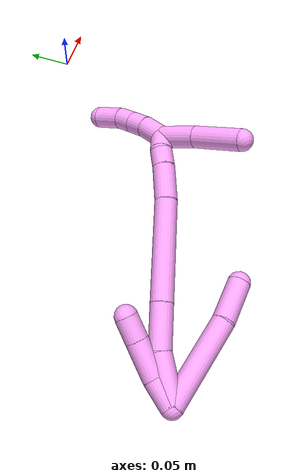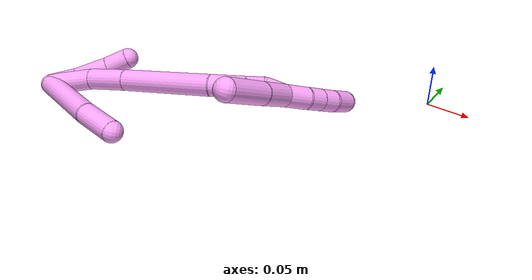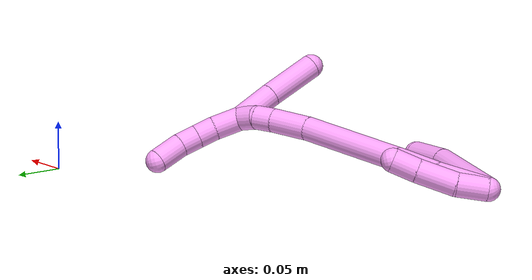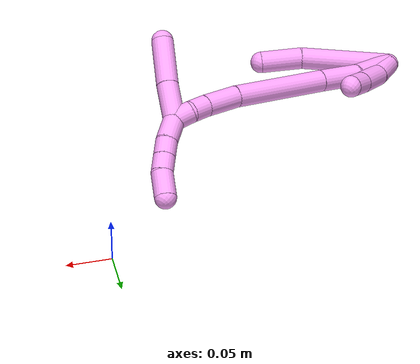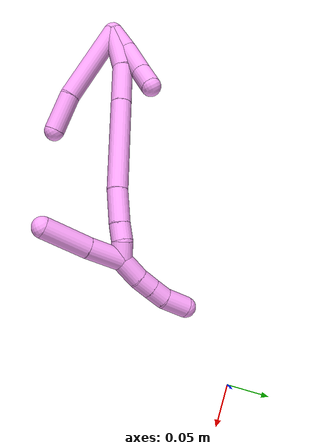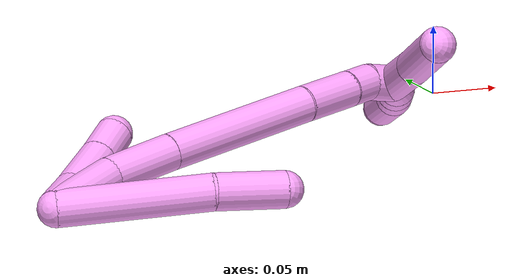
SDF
<sdf version="1.7">
 <world name="default">
  <model name="4">
   <static>0</static>
   <link name="4">
    <collision name="collision-cylinder-e_1_2_8">
     <pose>0.043497 -0.01215 -0.023846 2.67034 1.01922 2.33005</pose>
     <geometry><cylinder><radius>0.0125</radius><length>0.102142</length></cylinder></geometry>
     <surface>
      <friction><ode><mu>1.16</mu><mu2>1.16</mu2><slip1>0</slip1><slip2>0</slip2></ode></friction>
      <contact><ode><kp>1e+06</kp><kd>1</kd><max_vel>0</max_vel><min_depth>0.001</min_depth></ode></contact>
     </surface>
    </collision>
    <visual name="visual-cylinder-e_1_2_8">
     <pose>0.043497 -0.01215 -0.023846 2.67034 1.01922 2.33005</pose>
     <geometry><cylinder><radius>0.0125</radius><length>0.102142</length></cylinder></geometry>
     <material><ambient>1 0.65098 0.996078 1</ambient></material>
    </visual>
    <collision name="collision-cylinder-e_2_8_6">
     <pose>0.104797 -0.030506 -0.062427 2.74304 0.839018 2.29118</pose>
     <geometry><cylinder><radius>0.0125</radius><length>0.047858</length></cylinder></geometry>
     <surface>
      <friction><ode><mu>1.16</mu><mu2>1.16</mu2><slip1>0</slip1><slip2>0</slip2></ode></friction>
      <contact><ode><kp>1e+06</kp><kd>1</kd><max_vel>0</max_vel><min_depth>0.001</min_depth></ode></contact>
     </surface>
    </collision>
    <visual name="visual-cylinder-e_2_8_6">
     <pose>0.104797 -0.030506 -0.062427 2.74304 0.839018 2.29118</pose>
     <geometry><cylinder><radius>0.0125</radius><length>0.047858</length></cylinder></geometry>
     <material><ambient>1 0.65098 0.996078 1</ambient></material>
    </visual>
    <collision name="collision-cylinder-e_1_2_9">
     <pose>0.001782 0.00649 -0.014551 -2.72207 0.111355 -0.512105</pose>
     <geometry><cylinder><radius>0.0125</radius><length>0.032064</length></cylinder></geometry>
     <surface>
      <friction><ode><mu>1.16</mu><mu2>1.16</mu2><slip1>0</slip1><slip2>0</slip2></ode></friction>
      <contact><ode><kp>1e+06</kp><kd>1</kd><max_vel>0</max_vel><min_depth>0.001</min_depth></ode></contact>
     </surface>
    </collision>
    <visual name="visual-cylinder-e_1_2_9">
     <pose>0.001782 0.00649 -0.014551 -2.72207 0.111355 -0.512105</pose>
     <geometry><cylinder><radius>0.0125</radius><length>0.032064</length></cylinder></geometry>
     <material><ambient>1 0.65098 0.996078 1</ambient></material>
    </visual>
    <collision name="collision-cylinder-e_2_9_10">
     <pose>0.009292 0.023143 -0.046191 -2.60507 0.280544 -0.949034</pose>
     <geometry><cylinder><radius>0.0125</radius><length>0.041384</length></cylinder></geometry>
     <surface>
      <friction><ode><mu>1.16</mu><mu2>1.16</mu2><slip1>0</slip1><slip2>0</slip2></ode></friction>
      <contact><ode><kp>1e+06</kp><kd>1</kd><max_vel>0</max_vel><min_depth>0.001</min_depth></ode></contact>
     </surface>
    </collision>
    <visual name="visual-cylinder-e_2_9_10">
     <pose>0.009292 0.023143 -0.046191 -2.60507 0.280544 -0.949034</pose>
     <geometry><cylinder><radius>0.0125</radius><length>0.041384</length></cylinder></geometry>
     <material><ambient>1 0.65098 0.996078 1</ambient></material>
    </visual>
    <collision name="collision-cylinder-e_3_10_5">
     <pose>0.019018 0.04048 -0.073712 -2.53917 0.3058 -0.920948</pose>
     <geometry><cylinder><radius>0.0125</radius><length>0.026552</length></cylinder></geometry>
     <surface>
      <friction><ode><mu>1.16</mu><mu2>1.16</mu2><slip1>0</slip1><slip2>0</slip2></ode></friction>
      <contact><ode><kp>1e+06</kp><kd>1</kd><max_vel>0</max_vel><min_depth>0.001</min_depth></ode></contact>
     </surface>
    </collision>
    <visual name="visual-cylinder-e_3_10_5">
     <pose>0.019018 0.04048 -0.073712 -2.53917 0.3058 -0.920948</pose>
     <geometry><cylinder><radius>0.0125</radius><length>0.026552</length></cylinder></geometry>
     <material><ambient>1 0.65098 0.996078 1</ambient></material>
    </visual>
    <collision name="collision-cylinder-e_1_2_11">
     <pose>0.011915 0.007529 -0.023456 -2.83101 0.450498 -1.94282</pose>
     <geometry><cylinder><radius>0.0125</radius><length>0.05473</length></cylinder></geometry>
     <surface>
      <friction><ode><mu>1.16</mu><mu2>1.16</mu2><slip1>0</slip1><slip2>0</slip2></ode></friction>
      <contact><ode><kp>1e+06</kp><kd>1</kd><max_vel>0</max_vel><min_depth>0.001</min_depth></ode></contact>
     </surface>
    </collision>
    <visual name="visual-cylinder-e_1_2_11">
     <pose>0.011915 0.007529 -0.023456 -2.83101 0.450498 -1.94282</pose>
     <geometry><cylinder><radius>0.0125</radius><length>0.05473</length></cylinder></geometry>
     <material><ambient>1 0.65098 0.996078 1</ambient></material>
    </visual>
    <collision name="collision-cylinder-e_2_11_12">
     <pose>0.039143 0.017798 -0.066123 -2.99992 0.668062 -2.73824</pose>
     <geometry><cylinder><radius>0.0125</radius><length>0.049439</length></cylinder></geometry>
     <surface>
      <friction><ode><mu>1.16</mu><mu2>1.16</mu2><slip1>0</slip1><slip2>0</slip2></ode></friction>
      <contact><ode><kp>1e+06</kp><kd>1</kd><max_vel>0</max_vel><min_depth>0.001</min_depth></ode></contact>
     </surface>
    </collision>
    <visual name="visual-cylinder-e_2_11_12">
     <pose>0.039143 0.017798 -0.066123 -2.99992 0.668062 -2.73824</pose>
     <geometry><cylinder><radius>0.0125</radius><length>0.049439</length></cylinder></geometry>
     <material><ambient>1 0.65098 0.996078 1</ambient></material>
    </visual>
    <collision name="collision-cylinder-e_3_12_13">
     <pose>0.088918 0.025577 -0.129558 -3.02812 0.658844 -2.81233</pose>
     <geometry><cylinder><radius>0.0125</radius><length>0.112584</length></cylinder></geometry>
     <surface>
      <friction><ode><mu>1.16</mu><mu2>1.16</mu2><slip1>0</slip1><slip2>0</slip2></ode></friction>
      <contact><ode><kp>1e+06</kp><kd>1</kd><max_vel>0</max_vel><min_depth>0.001</min_depth></ode></contact>
     </surface>
    </collision>
    <visual name="visual-cylinder-e_3_12_13">
     <pose>0.088918 0.025577 -0.129558 -3.02812 0.658844 -2.81233</pose>
     <geometry><cylinder><radius>0.0125</radius><length>0.112584</length></cylinder></geometry>
     <material><ambient>1 0.65098 0.996078 1</ambient></material>
    </visual>
    <collision name="collision-cylinder-e_4_13_14">
     <pose>0.134093 0.032664 -0.191209 -3.02467 0.548102 -2.73108</pose>
     <geometry><cylinder><radius>0.0125</radius><length>0.041118</length></cylinder></geometry>
     <surface>
      <friction><ode><mu>1.16</mu><mu2>1.16</mu2><slip1>0</slip1><slip2>0</slip2></ode></friction>
      <contact><ode><kp>1e+06</kp><kd>1</kd><max_vel>0</max_vel><min_depth>0.001</min_depth></ode></contact>
     </surface>
    </collision>
    <visual name="visual-cylinder-e_4_13_14">
     <pose>0.134093 0.032664 -0.191209 -3.02467 0.548102 -2.73108</pose>
     <geometry><cylinder><radius>0.0125</radius><length>0.041118</length></cylinder></geometry>
     <material><ambient>1 0.65098 0.996078 1</ambient></material>
    </visual>
    <collision name="collision-cylinder-e_5_14_15">
     <pose>0.149411 0.03592 -0.217738 -3.00954 0.465017 -2.59698</pose>
     <geometry><cylinder><radius>0.0125</radius><length>0.020543</length></cylinder></geometry>
     <surface>
      <friction><ode><mu>1.16</mu><mu2>1.16</mu2><slip1>0</slip1><slip2>0</slip2></ode></friction>
      <contact><ode><kp>1e+06</kp><kd>1</kd><max_vel>0</max_vel><min_depth>0.001</min_depth></ode></contact>
     </surface>
    </collision>
    <visual name="visual-cylinder-e_5_14_15">
     <pose>0.149411 0.03592 -0.217738 -3.00954 0.465017 -2.59698</pose>
     <geometry><cylinder><radius>0.0125</radius><length>0.020543</length></cylinder></geometry>
     <material><ambient>1 0.65098 0.996078 1</ambient></material>
    </visual>
    <collision name="collision-cylinder-e_6_15_1">
     <pose>0.159035 0.035048 -0.236166 2.92208 0.48345 2.30092</pose>
     <geometry><cylinder><radius>0.0125</radius><length>0.021586</length></cylinder></geometry>
     <surface>
      <friction><ode><mu>1.16</mu><mu2>1.16</mu2><slip1>0</slip1><slip2>0</slip2></ode></friction>
      <contact><ode><kp>1e+06</kp><kd>1</kd><max_vel>0</max_vel><min_depth>0.001</min_depth></ode></contact>
     </surface>
    </collision>
    <visual name="visual-cylinder-e_6_15_1">
     <pose>0.159035 0.035048 -0.236166 2.92208 0.48345 2.30092</pose>
     <geometry><cylinder><radius>0.0125</radius><length>0.021586</length></cylinder></geometry>
     <material><ambient>1 0.65098 0.996078 1</ambient></material>
    </visual>
    <collision name="collision-cylinder-e_1_1_16">
     <pose>0.160455 0.033756 -0.259615 -3.08577 -0.249024 2.70264</pose>
     <geometry><cylinder><radius>0.0125</radius><length>0.029189</length></cylinder></geometry>
     <surface>
      <friction><ode><mu>1.16</mu><mu2>1.16</mu2><slip1>0</slip1><slip2>0</slip2></ode></friction>
      <contact><ode><kp>1e+06</kp><kd>1</kd><max_vel>0</max_vel><min_depth>0.001</min_depth></ode></contact>
     </surface>
    </collision>
    <visual name="visual-cylinder-e_1_1_16">
     <pose>0.160455 0.033756 -0.259615 -3.08577 -0.249024 2.70264</pose>
     <geometry><cylinder><radius>0.0125</radius><length>0.029189</length></cylinder></geometry>
     <material><ambient>1 0.65098 0.996078 1</ambient></material>
    </visual>
    <collision name="collision-cylinder-e_2_16_17">
     <pose>0.152823 0.035224 -0.282936 -3.06803 -0.412369 2.79327</pose>
     <geometry><cylinder><radius>0.0125</radius><length>0.020138</length></cylinder></geometry>
     <surface>
      <friction><ode><mu>1.16</mu><mu2>1.16</mu2><slip1>0</slip1><slip2>0</slip2></ode></friction>
      <contact><ode><kp>1e+06</kp><kd>1</kd><max_vel>0</max_vel><min_depth>0.001</min_depth></ode></contact>
     </surface>
    </collision>
    <visual name="visual-cylinder-e_2_16_17">
     <pose>0.152823 0.035224 -0.282936 -3.06803 -0.412369 2.79327</pose>
     <geometry><cylinder><radius>0.0125</radius><length>0.020138</length></cylinder></geometry>
     <material><ambient>1 0.65098 0.996078 1</ambient></material>
    </visual>
    <collision name="collision-cylinder-e_3_17_18">
     <pose>0.144638 0.036565 -0.30131 -3.06938 -0.42376 2.80884</pose>
     <geometry><cylinder><radius>0.0125</radius><length>0.02018</length></cylinder></geometry>
     <surface>
      <friction><ode><mu>1.16</mu><mu2>1.16</mu2><slip1>0</slip1><slip2>0</slip2></ode></friction>
      <contact><ode><kp>1e+06</kp><kd>1</kd><max_vel>0</max_vel><min_depth>0.001</min_depth></ode></contact>
     </surface>
    </collision>
    <visual name="visual-cylinder-e_3_17_18">
     <pose>0.144638 0.036565 -0.30131 -3.06938 -0.42376 2.80884</pose>
     <geometry><cylinder><radius>0.0125</radius><length>0.02018</length></cylinder></geometry>
     <material><ambient>1 0.65098 0.996078 1</ambient></material>
    </visual>
    <collision name="collision-cylinder-e_4_18_4">
     <pose>0.130998 0.038596 -0.322338 -3.0268 -0.671929 2.81542</pose>
     <geometry><cylinder><radius>0.0125</radius><length>0.030493</length></cylinder></geometry>
     <surface>
      <friction><ode><mu>1.16</mu><mu2>1.16</mu2><slip1>0</slip1><slip2>0</slip2></ode></friction>
      <contact><ode><kp>1e+06</kp><kd>1</kd><max_vel>0</max_vel><min_depth>0.001</min_depth></ode></contact>
     </surface>
    </collision>
    <visual name="visual-cylinder-e_4_18_4">
     <pose>0.130998 0.038596 -0.322338 -3.0268 -0.671929 2.81542</pose>
     <geometry><cylinder><radius>0.0125</radius><length>0.030493</length></cylinder></geometry>
     <material><ambient>1 0.65098 0.996078 1</ambient></material>
    </visual>
    <collision name="collision-cylinder-e_1_1_19">
     <pose>0.178474 0.031417 -0.229284 0.095369 0.724895 0.036187</pose>
     <geometry><cylinder><radius>0.0125</radius><length>0.043502</length></cylinder></geometry>
     <surface>
      <friction><ode><mu>1.16</mu><mu2>1.16</mu2><slip1>0</slip1><slip2>0</slip2></ode></friction>
      <contact><ode><kp>1e+06</kp><kd>1</kd><max_vel>0</max_vel><min_depth>0.001</min_depth></ode></contact>
     </surface>
    </collision>
    <visual name="visual-cylinder-e_1_1_19">
     <pose>0.178474 0.031417 -0.229284 0.095369 0.724895 0.036187</pose>
     <geometry><cylinder><radius>0.0125</radius><length>0.043502</length></cylinder></geometry>
     <material><ambient>1 0.65098 0.996078 1</ambient></material>
    </visual>
    <collision name="collision-cylinder-e_2_19_3">
     <pose>0.210108 0.028086 -0.190747 0.079544 0.655163 0.027044</pose>
     <geometry><cylinder><radius>0.0125</radius><length>0.056498</length></cylinder></geometry>
     <surface>
      <friction><ode><mu>1.16</mu><mu2>1.16</mu2><slip1>0</slip1><slip2>0</slip2></ode></friction>
      <contact><ode><kp>1e+06</kp><kd>1</kd><max_vel>0</max_vel><min_depth>0.001</min_depth></ode></contact>
     </surface>
    </collision>
    <visual name="visual-cylinder-e_2_19_3">
     <pose>0.210108 0.028086 -0.190747 0.079544 0.655163 0.027044</pose>
     <geometry><cylinder><radius>0.0125</radius><length>0.056498</length></cylinder></geometry>
     <material><ambient>1 0.65098 0.996078 1</ambient></material>
    </visual>
    <collision name="collision-sphere-3">
     <pose>0.22732 0.026306 -0.168418 0 -0 0</pose>
     <geometry><sphere><radius>0.0125</radius></sphere></geometry>
     <surface>
      <friction><ode><mu>1.16</mu><mu2>1.16</mu2><slip1>0</slip1><slip2>0</slip2></ode></friction>
      <contact><ode><kp>1e+06</kp><kd>1</kd><max_vel>0</max_vel><min_depth>0.001</min_depth></ode></contact>
     </surface>
    </collision>
    <visual name="visual-sphere-3">
     <pose>0.22732 0.026306 -0.168418 0 -0 0</pose>
     <geometry><sphere><radius>0.0125</radius></sphere></geometry>
     <material><ambient>1 0.65098 0.996078 1</ambient></material>
    </visual>
    <collision name="collision-sphere-19">
     <pose>0.192896 0.029866 -0.213076 0 -0 0</pose>
     <geometry><sphere><radius>0.0125</radius></sphere></geometry>
     <surface>
      <friction><ode><mu>1.16</mu><mu2>1.16</mu2><slip1>0</slip1><slip2>0</slip2></ode></friction>
      <contact><ode><kp>1e+06</kp><kd>1</kd><max_vel>0</max_vel><min_depth>0.001</min_depth></ode></contact>
     </surface>
    </collision>
    <visual name="visual-sphere-19">
     <pose>0.192896 0.029866 -0.213076 0 -0 0</pose>
     <geometry><sphere><radius>0.0125</radius></sphere></geometry>
     <material><ambient>1 0.65098 0.996078 1</ambient></material>
    </visual>
    <collision name="collision-sphere-5">
     <pose>0.023015 0.047653 -0.084144 0 -0 0</pose>
     <geometry><sphere><radius>0.0125</radius></sphere></geometry>
     <surface>
      <friction><ode><mu>1.16</mu><mu2>1.16</mu2><slip1>0</slip1><slip2>0</slip2></ode></friction>
      <contact><ode><kp>1e+06</kp><kd>1</kd><max_vel>0</max_vel><min_depth>0.001</min_depth></ode></contact>
     </surface>
    </collision>
    <visual name="visual-sphere-5">
     <pose>0.023015 0.047653 -0.084144 0 -0 0</pose>
     <geometry><sphere><radius>0.0125</radius></sphere></geometry>
     <material><ambient>1 0.65098 0.996078 1</ambient></material>
    </visual>
    <collision name="collision-sphere-10">
     <pose>0.015021 0.033306 -0.063281 0 -0 0</pose>
     <geometry><sphere><radius>0.0125</radius></sphere></geometry>
     <surface>
      <friction><ode><mu>1.16</mu><mu2>1.16</mu2><slip1>0</slip1><slip2>0</slip2></ode></friction>
      <contact><ode><kp>1e+06</kp><kd>1</kd><max_vel>0</max_vel><min_depth>0.001</min_depth></ode></contact>
     </surface>
    </collision>
    <visual name="visual-sphere-10">
     <pose>0.015021 0.033306 -0.063281 0 -0 0</pose>
     <geometry><sphere><radius>0.0125</radius></sphere></geometry>
     <material><ambient>1 0.65098 0.996078 1</ambient></material>
    </visual>
    <collision name="collision-sphere-6">
     <pose>0.1226 -0.036711 -0.077163 0 -0 0</pose>
     <geometry><sphere><radius>0.0125</radius></sphere></geometry>
     <surface>
      <friction><ode><mu>1.16</mu><mu2>1.16</mu2><slip1>0</slip1><slip2>0</slip2></ode></friction>
      <contact><ode><kp>1e+06</kp><kd>1</kd><max_vel>0</max_vel><min_depth>0.001</min_depth></ode></contact>
     </surface>
    </collision>
    <visual name="visual-sphere-6">
     <pose>0.1226 -0.036711 -0.077163 0 -0 0</pose>
     <geometry><sphere><radius>0.0125</radius></sphere></geometry>
     <material><ambient>1 0.65098 0.996078 1</ambient></material>
    </visual>
    <collision name="collision-sphere-9">
     <pose>0.003563 0.01298 -0.029102 0 -0 0</pose>
     <geometry><sphere><radius>0.0125</radius></sphere></geometry>
     <surface>
      <friction><ode><mu>1.16</mu><mu2>1.16</mu2><slip1>0</slip1><slip2>0</slip2></ode></friction>
      <contact><ode><kp>1e+06</kp><kd>1</kd><max_vel>0</max_vel><min_depth>0.001</min_depth></ode></contact>
     </surface>
    </collision>
    <visual name="visual-sphere-9">
     <pose>0.003563 0.01298 -0.029102 0 -0 0</pose>
     <geometry><sphere><radius>0.0125</radius></sphere></geometry>
     <material><ambient>1 0.65098 0.996078 1</ambient></material>
    </visual>
    <collision name="collision-sphere-2">
     <geometry><sphere><radius>0.0125</radius></sphere></geometry>
     <surface>
      <friction><ode><mu>1.16</mu><mu2>1.16</mu2><slip1>0</slip1><slip2>0</slip2></ode></friction>
      <contact><ode><kp>1e+06</kp><kd>1</kd><max_vel>0</max_vel><min_depth>0.001</min_depth></ode></contact>
     </surface>
    </collision>
    <visual name="visual-sphere-2">
     <geometry><sphere><radius>0.0125</radius></sphere></geometry>
     <material><ambient>1 0.65098 0.996078 1</ambient></material>
    </visual>
    <collision name="collision-sphere-8">
     <pose>0.086994 -0.024301 -0.047691 0 -0 0</pose>
     <geometry><sphere><radius>0.0125</radius></sphere></geometry>
     <surface>
      <friction><ode><mu>1.16</mu><mu2>1.16</mu2><slip1>0</slip1><slip2>0</slip2></ode></friction>
      <contact><ode><kp>1e+06</kp><kd>1</kd><max_vel>0</max_vel><min_depth>0.001</min_depth></ode></contact>
     </surface>
    </collision>
    <visual name="visual-sphere-8">
     <pose>0.086994 -0.024301 -0.047691 0 -0 0</pose>
     <geometry><sphere><radius>0.0125</radius></sphere></geometry>
     <material><ambient>1 0.65098 0.996078 1</ambient></material>
    </visual>
    <collision name="collision-sphere-11">
     <pose>0.02383 0.015058 -0.046912 0 -0 0</pose>
     <geometry><sphere><radius>0.0125</radius></sphere></geometry>
     <surface>
      <friction><ode><mu>1.16</mu><mu2>1.16</mu2><slip1>0</slip1><slip2>0</slip2></ode></friction>
      <contact><ode><kp>1e+06</kp><kd>1</kd><max_vel>0</max_vel><min_depth>0.001</min_depth></ode></contact>
     </surface>
    </collision>
    <visual name="visual-sphere-11">
     <pose>0.02383 0.015058 -0.046912 0 -0 0</pose>
     <geometry><sphere><radius>0.0125</radius></sphere></geometry>
     <material><ambient>1 0.65098 0.996078 1</ambient></material>
    </visual>
    <collision name="collision-sphere-12">
     <pose>0.054456 0.020538 -0.085334 0 -0 0</pose>
     <geometry><sphere><radius>0.0125</radius></sphere></geometry>
     <surface>
      <friction><ode><mu>1.16</mu><mu2>1.16</mu2><slip1>0</slip1><slip2>0</slip2></ode></friction>
      <contact><ode><kp>1e+06</kp><kd>1</kd><max_vel>0</max_vel><min_depth>0.001</min_depth></ode></contact>
     </surface>
    </collision>
    <visual name="visual-sphere-12">
     <pose>0.054456 0.020538 -0.085334 0 -0 0</pose>
     <geometry><sphere><radius>0.0125</radius></sphere></geometry>
     <material><ambient>1 0.65098 0.996078 1</ambient></material>
    </visual>
    <collision name="collision-sphere-13">
     <pose>0.12338 0.030617 -0.173782 0 -0 0</pose>
     <geometry><sphere><radius>0.0125</radius></sphere></geometry>
     <surface>
      <friction><ode><mu>1.16</mu><mu2>1.16</mu2><slip1>0</slip1><slip2>0</slip2></ode></friction>
      <contact><ode><kp>1e+06</kp><kd>1</kd><max_vel>0</max_vel><min_depth>0.001</min_depth></ode></contact>
     </surface>
    </collision>
    <visual name="visual-sphere-13">
     <pose>0.12338 0.030617 -0.173782 0 -0 0</pose>
     <geometry><sphere><radius>0.0125</radius></sphere></geometry>
     <material><ambient>1 0.65098 0.996078 1</ambient></material>
    </visual>
    <collision name="collision-sphere-14">
     <pose>0.144805 0.034711 -0.208637 0 -0 0</pose>
     <geometry><sphere><radius>0.0125</radius></sphere></geometry>
     <surface>
      <friction><ode><mu>1.16</mu><mu2>1.16</mu2><slip1>0</slip1><slip2>0</slip2></ode></friction>
      <contact><ode><kp>1e+06</kp><kd>1</kd><max_vel>0</max_vel><min_depth>0.001</min_depth></ode></contact>
     </surface>
    </collision>
    <visual name="visual-sphere-14">
     <pose>0.144805 0.034711 -0.208637 0 -0 0</pose>
     <geometry><sphere><radius>0.0125</radius></sphere></geometry>
     <material><ambient>1 0.65098 0.996078 1</ambient></material>
    </visual>
    <collision name="collision-sphere-15">
     <pose>0.154018 0.037129 -0.226839 0 -0 0</pose>
     <geometry><sphere><radius>0.0125</radius></sphere></geometry>
     <surface>
      <friction><ode><mu>1.16</mu><mu2>1.16</mu2><slip1>0</slip1><slip2>0</slip2></ode></friction>
      <contact><ode><kp>1e+06</kp><kd>1</kd><max_vel>0</max_vel><min_depth>0.001</min_depth></ode></contact>
     </surface>
    </collision>
    <visual name="visual-sphere-15">
     <pose>0.154018 0.037129 -0.226839 0 -0 0</pose>
     <geometry><sphere><radius>0.0125</radius></sphere></geometry>
     <material><ambient>1 0.65098 0.996078 1</ambient></material>
    </visual>
    <collision name="collision-sphere-1">
     <pose>0.164052 0.032967 -0.245492 0 -0 0</pose>
     <geometry><sphere><radius>0.0125</radius></sphere></geometry>
     <surface>
      <friction><ode><mu>1.16</mu><mu2>1.16</mu2><slip1>0</slip1><slip2>0</slip2></ode></friction>
      <contact><ode><kp>1e+06</kp><kd>1</kd><max_vel>0</max_vel><min_depth>0.001</min_depth></ode></contact>
     </surface>
    </collision>
    <visual name="visual-sphere-1">
     <pose>0.164052 0.032967 -0.245492 0 -0 0</pose>
     <geometry><sphere><radius>0.0125</radius></sphere></geometry>
     <material><ambient>1 0.65098 0.996078 1</ambient></material>
    </visual>
    <collision name="collision-sphere-18">
     <pose>0.140489 0.037229 -0.310484 0 -0 0</pose>
     <geometry><sphere><radius>0.0125</radius></sphere></geometry>
     <surface>
      <friction><ode><mu>1.16</mu><mu2>1.16</mu2><slip1>0</slip1><slip2>0</slip2></ode></friction>
      <contact><ode><kp>1e+06</kp><kd>1</kd><max_vel>0</max_vel><min_depth>0.001</min_depth></ode></contact>
     </surface>
    </collision>
    <visual name="visual-sphere-18">
     <pose>0.140489 0.037229 -0.310484 0 -0 0</pose>
     <geometry><sphere><radius>0.0125</radius></sphere></geometry>
     <material><ambient>1 0.65098 0.996078 1</ambient></material>
    </visual>
    <collision name="collision-sphere-16">
     <pose>0.156858 0.034546 -0.273737 0 -0 0</pose>
     <geometry><sphere><radius>0.0125</radius></sphere></geometry>
     <surface>
      <friction><ode><mu>1.16</mu><mu2>1.16</mu2><slip1>0</slip1><slip2>0</slip2></ode></friction>
      <contact><ode><kp>1e+06</kp><kd>1</kd><max_vel>0</max_vel><min_depth>0.001</min_depth></ode></contact>
     </surface>
    </collision>
    <visual name="visual-sphere-16">
     <pose>0.156858 0.034546 -0.273737 0 -0 0</pose>
     <geometry><sphere><radius>0.0125</radius></sphere></geometry>
     <material><ambient>1 0.65098 0.996078 1</ambient></material>
    </visual>
    <collision name="collision-sphere-17">
     <pose>0.148787 0.035902 -0.292136 0 -0 0</pose>
     <geometry><sphere><radius>0.0125</radius></sphere></geometry>
     <surface>
      <friction><ode><mu>1.16</mu><mu2>1.16</mu2><slip1>0</slip1><slip2>0</slip2></ode></friction>
      <contact><ode><kp>1e+06</kp><kd>1</kd><max_vel>0</max_vel><min_depth>0.001</min_depth></ode></contact>
     </surface>
    </collision>
    <visual name="visual-sphere-17">
     <pose>0.148787 0.035902 -0.292136 0 -0 0</pose>
     <geometry><sphere><radius>0.0125</radius></sphere></geometry>
     <material><ambient>1 0.65098 0.996078 1</ambient></material>
    </visual>
    <collision name="collision-sphere-4">
     <pose>0.121507 0.039962 -0.334192 0 -0 0</pose>
     <geometry><sphere><radius>0.0125</radius></sphere></geometry>
     <surface>
      <friction><ode><mu>1.16</mu><mu2>1.16</mu2><slip1>0</slip1><slip2>0</slip2></ode></friction>
      <contact><ode><kp>1e+06</kp><kd>1</kd><max_vel>0</max_vel><min_depth>0.001</min_depth></ode></contact>
     </surface>
    </collision>
    <visual name="visual-sphere-4">
     <pose>0.121507 0.039962 -0.334192 0 -0 0</pose>
     <geometry><sphere><radius>0.0125</radius></sphere></geometry>
     <material><ambient>1 0.65098 0.996078 1</ambient></material>
    </visual>
    <inertial>
     <pose>0.092437 0.017482 -0.128356 0 -0 0</pose>
     <mass>0.75</mass>
     <inertia>
      <ixx>-0.000121</ixx>
      <ixy>0</ixy>
      <ixz>0</ixz>
      <iyy>0.000254</iyy>
      <iyz>0</iyz>
      <izz>-0.000228</izz>
     </inertia>
    </inertial>
   </link>
   <pose>-0.380164 -0.257369 0.012233 1.25489 -0.491249 -0.634189</pose>
  </model>
 </world>
</sdf>
